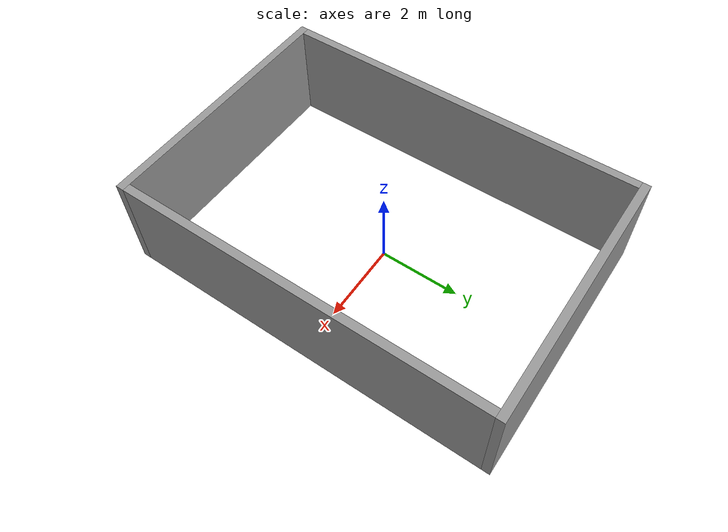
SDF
<?xml version='1.0'?>
<sdf version='1.4'>
  <model name='model'>
    <link name='Wall_North'>
      <collision name='Wall_North_Collision'>
        <geometry>
          <box>
            <size>6.4 0.2 2.5</size>
          </box>
        </geometry>
        <pose>0 0 1.25 0 -0 0</pose>
      </collision>
      <visual name='Wall_North_Visual'>
        <pose>0 0 1.25 0 0 0</pose>
        <geometry>
          <box>
            <size>6.4 0.2 2.5</size>
          </box>
        </geometry>
        <material>
          <script>
            <uri>file://media/materials/scripts/gazebo.material</uri>
            <name>Gazebo/Grey</name>
          </script>
        </material>
      </visual>
      <velocity_decay>
        <linear>0</linear>
        <angular>0</angular>
      </velocity_decay>
      <pose>0 4.6 0 0 0 0 </pose>
    </link>
    <link name='Wall_South'>
      <collision name='Wall_South_Collision'>
        <geometry>
          <box>
            <size>6.4 0.2 2.5</size>
          </box>
        </geometry>
        <pose>0 0 1.25 0 -0 0</pose>
      </collision>
      <visual name='Wall_South_Visual'>
        <pose>0 0 1.25 0 0 0</pose>
        <geometry>
          <box>
            <size>6.4 0.2 2.5</size>
          </box>
        </geometry>
        <material>
          <script>
            <uri>file://media/materials/scripts/gazebo.material</uri>
            <name>Gazebo/Grey</name>
          </script>
        </material>
      </visual>
      <velocity_decay>
        <linear>0</linear>
        <angular>0</angular>
      </velocity_decay>
      <pose>0 -4.6 0 0 0 0 </pose>
    </link>
    <link name='Wall_East'>
      <collision name='Wall_East_Collision'>
        <geometry>
          <box>
            <size>9 0.2 2.5</size>
          </box>
        </geometry>
        <pose>0 0 1.25 0 -0 0</pose>
      </collision>
      <visual name='Wall_East_Visual'>
        <pose>0 0 1.25 0 -0 0</pose>
        <geometry>
          <box>
            <size>9 0.2 2.5</size>
          </box>
        </geometry>
        <material>
          <script>
            <uri>file://media/materials/scripts/gazebo.material</uri>
            <name>Gazebo/Grey</name>
          </script>
        </material>
      </visual>
      <velocity_decay>
        <linear>0</linear>
        <angular>0</angular>
      </velocity_decay>
      <pose>3.1 0 0 0 0 1.57079632679</pose>
    </link>
    <link name='Wall_West'>
      <collision name='Wall_West_Collision'>
        <geometry>
          <box>
            <size>9 0.2 2.5</size>
          </box>
        </geometry>
        <pose>0 0 1.25 0 -0 0</pose>
      </collision>
      <visual name='Wall_West_Visual'>
        <pose>0 0 1.25 0 -0 0</pose>
        <geometry>
          <box>
            <size>9 0.2 2.5</size>
          </box>
        </geometry>
        <material>
          <script>
            <uri>file://media/materials/scripts/gazebo.material</uri>
            <name>Gazebo/Grey</name>
          </script>
        </material>
      </visual>
      <velocity_decay>
        <linear>0</linear>
        <angular>0</angular>
      </velocity_decay>
      <pose>-3.1 0 0 0 0 1.57079632679</pose>
    </link>
    <static>1</static>
  </model>
</sdf>
